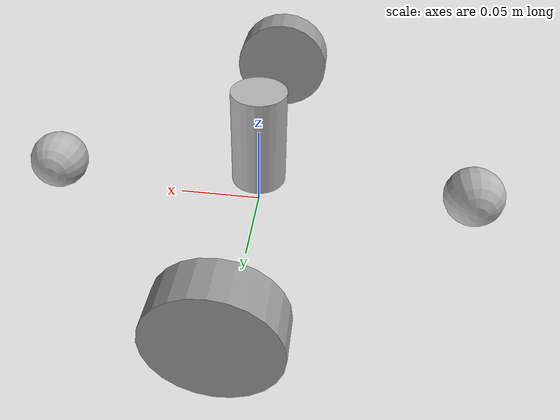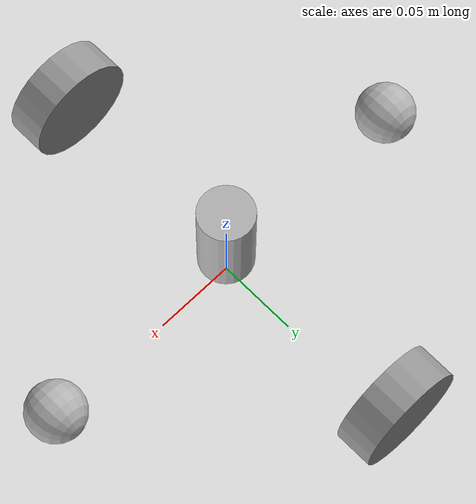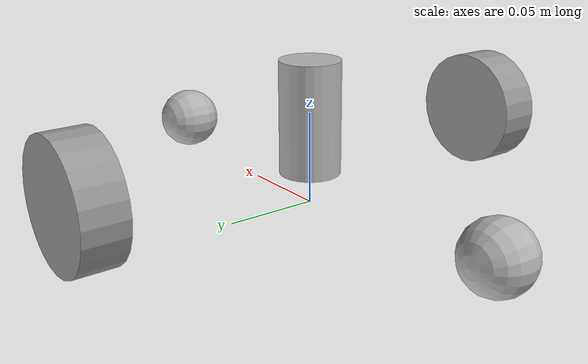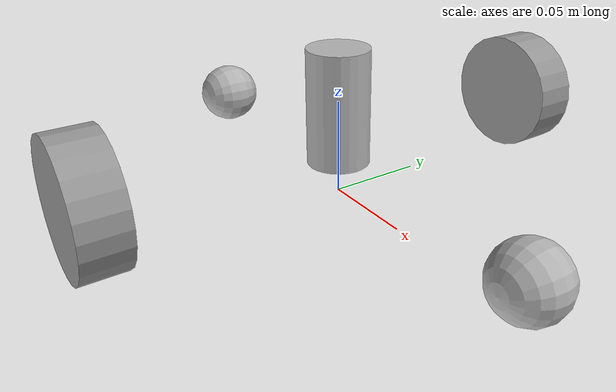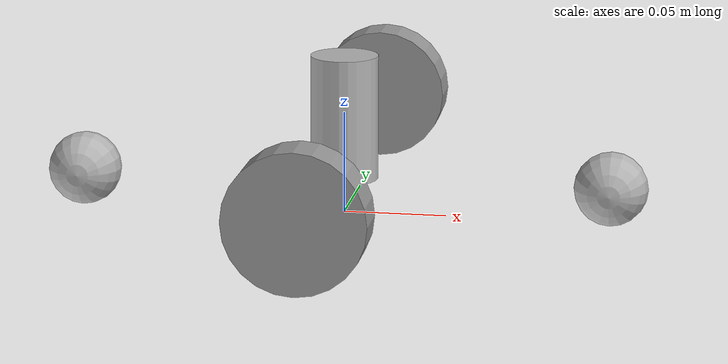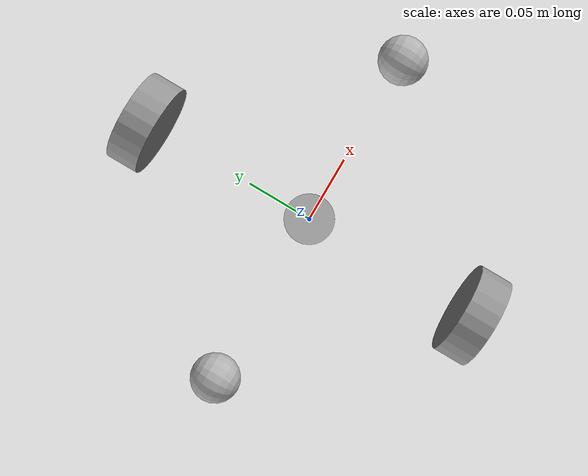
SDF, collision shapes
<?xml version="1.0" ?>
<sdf version="1.5">
  <model name="create">
    <link name="base">
      <inertial>
        <pose>0.001453 -0.000453 0.029787 0 0 0</pose>
        <inertia>
          <ixx>0.058640</ixx>
          <ixy>0.000124</ixy>
          <ixz>0.000615</ixz>
          <iyy>0.058786</iyy>
          <iyz>0.000014</iyz>
          <izz>1.532440</izz>
        </inertia>
        <mass>2.234000</mass>
      </inertial>
      <collision name="base_collision">
        <pose>0 0 0.047800 0 0 0</pose>
        <geometry>
          <cylinder>
            <radius>0.016495</radius>
            <length>0.061163</length>
          </cylinder>
        </geometry>
      </collision>
      <visual name="base_visual">
        <pose>0 0 0.047800 0 0 0</pose>
        <geometry>
          <mesh>
            <uri>model://create/meshes/create_body.dae</uri>
          </mesh>
        </geometry>
      </visual>
      <collision name="front_wheel_collision">
        <pose>0.130000 0 0.017000 0 1.570700 1.570700</pose>
        <geometry>
          <sphere>
            <radius>0.018000</radius>
          </sphere>
        </geometry>
        <surface>
          <friction>
            <ode>
              <mu>0</mu>
              <mu2>0</mu2>
              <fdir1>0 0 0</fdir1>
              <slip1>0</slip1>
              <slip2>0</slip2>
            </ode>
          </friction>
        </surface>
      </collision>
      <visual name="front_wheel_visual">
        <pose>0.130000 0 0.017000 0 1.570700 1.570700</pose>
        <geometry>
          <sphere>
            <radius>0.009000</radius>
          </sphere>
        </geometry>
      </visual>
      <collision name="rear_wheel_collision">
        <pose>-0.13 0 0.017 0 1.5707 1.5707</pose>
        <geometry>
          <sphere>
            <radius>0.018000</radius>
          </sphere>
        </geometry>
        <surface>
          <friction>
            <ode>
              <mu>0</mu>
              <mu2>0</mu2>
              <fdir1>0 0 0</fdir1>
              <slip1>0</slip1>
              <slip2>0</slip2>
            </ode>
          </friction>
        </surface>
      </collision>
      <visual name="rear_wheel_visual">
        <pose>-0.130000 0 0.017000 0 1.570700 1.570700</pose>
        <geometry>
          <sphere>
            <radius>0.007500</radius>
          </sphere>
        </geometry>
      </visual>
      <sensor name="left_cliff_sensor" type="ray">
        <pose>0.070000 0.140000 0.027000 0 1.570790 0</pose>
        <ray>
          <scan>
            <horizontal>
              <samples>1</samples>
              <resolution>1.000000</resolution>
              <min_angle>0</min_angle>
              <max_angle>0</max_angle>
            </horizontal>
          </scan>
          <range>
            <min>0.010000</min>
            <max>0.040000</max>
            <resolution>0.100000</resolution>
          </range>
        </ray>
      </sensor>
      <sensor name="leftfront_cliff_sensor" type="ray">
        <pose>0.150000 0.040000 0.027000 0 1.570790 0</pose>
        <ray>
          <scan>
            <horizontal>
              <samples>1</samples>
              <resolution>1.000000</resolution>
              <min_angle>0</min_angle>
              <max_angle>0</max_angle>
            </horizontal>
          </scan>
          <range>
            <min>0.010000</min>
            <max>0.040000</max>
            <resolution>0.100000</resolution>
          </range>
        </ray>
      </sensor>
      <sensor name="right_cliff_sensor" type="ray">
        <pose>0.070000 -0.140000 0.027000 0 1.570790 0</pose>
        <ray>
          <scan>
            <horizontal>
              <samples>1</samples>
              <resolution>1.000000</resolution>
              <min_angle>0</min_angle>
              <max_angle>0</max_angle>
            </horizontal>
          </scan>
          <range>
            <min>0.010000</min>
            <max>0.040000</max>
            <resolution>0.100000</resolution>
          </range>
        </ray>
      </sensor>
      <sensor name="rightfront_cliff_sensor" type="ray">
        <pose>0.150000 -0.040000 0.027000 0 1.570790 0</pose>
        <ray>
          <scan>
            <horizontal>
              <samples>1</samples>
              <resolution>1.000000</resolution>
              <min_angle>0</min_angle>
              <max_angle>0</max_angle>
            </horizontal>
          </scan>
          <range>
            <min>0.010000</min>
            <max>0.040000</max>
            <resolution>0.100000</resolution>
          </range>
        </ray>
      </sensor>
      <sensor name="wall_sensor" type="ray">
        <pose>0.090000 -0.120000 0.059000 0 0 -1.000000</pose>
        <ray>
          <scan>
            <horizontal>
              <samples>1</samples>
              <resolution>1.000000</resolution>
              <min_angle>0</min_angle>
              <max_angle>0</max_angle>
            </horizontal>
          </scan>
          <range>
            <min>0.016000</min>
            <max>0.040000</max>
            <resolution>0.100000</resolution>
          </range>
        </ray>
      </sensor>
    </link>
    <link name="left_wheel">
      <pose>0 0.130000 0.032000 0 0 0</pose>
      <inertial>
        <mass>0.5</mass>
        <pose>0 0 0 0 0 0</pose>
        <inertia>
          <ixx>0.001000</ixx>
          <ixy>0</ixy>
          <ixz>0</ixz>
          <iyy>0.001000</iyy>
          <iyz>0</iyz>
          <izz>0.001000</izz>
        </inertia>
      </inertial>
      <collision name="collision">
        <pose>0 0 0 0 1.570700 1.570700</pose>
        <geometry>
          <cylinder>
            <radius>0.033000</radius>
            <length>0.023000</length>
          </cylinder>
        </geometry>
        <surface>
          <friction>
            <ode>
              <mu>100</mu>
              <mu2>100</mu2>
              <fdir1>0 0 0</fdir1>
              <slip1>0</slip1>
              <slip2>0</slip2>
            </ode>
          </friction>
        </surface>
      </collision>
      <visual name="visual">
        <pose>0 0 0 0 1.570700 1.570700</pose>
        <geometry>
          <cylinder>
            <radius>0.033000</radius>
            <length>0.023000</length>
          </cylinder>
        </geometry>
        <material>
          <script>
            <name>Gazebo/Grey</name>
          </script>
        </material>
      </visual>
    </link>
    <link name="right_wheel">
      <pose>0 -0.130000 0.032000 0 0 0</pose>
      <inertial>
        <mass>0.5</mass>
        <pose>0 0 0 0 0 0</pose>
        <inertia>
          <ixx>0.001000</ixx>
          <ixy>0</ixy>
          <ixz>0</ixz>
          <iyy>0.001000</iyy>
          <iyz>0</iyz>
          <izz>0.001000</izz>
        </inertia>
      </inertial>
      <collision name="collision">
        <pose>0 0 0 0 1.570700 1.570700</pose>
        <geometry>
          <cylinder>
            <radius>0.033000</radius>
            <length>0.023000</length>
          </cylinder>
        </geometry>
        <surface>
          <friction>
            <ode>
              <mu>100</mu>
              <mu2>100</mu2>
              <fdir1>0 0 0</fdir1>
              <slip1>0</slip1>
              <slip2>0</slip2>
            </ode>
          </friction>
        </surface>
      </collision>
      <visual name="visual">
        <pose>0 0 0 0 1.570700 1.570700</pose>
        <geometry>
          <cylinder>
            <radius>0.033000</radius>
            <length>0.023000</length>
          </cylinder>
        </geometry>
        <material>
          <script>
            <name>Gazebo/Grey</name>
          </script>
        </material>
      </visual>
    </link>
    <joint name="left_wheel_joint" type="revolute">
      <parent>base</parent>
      <child>left_wheel</child>
      <axis>
        <xyz>0 1 0</xyz>
        <use_parent_model_frame>true</use_parent_model_frame>
      </axis>
    </joint>
    <joint name="right_wheel_joint" type="revolute">
      <parent>base</parent>
      <child>right_wheel</child>
      <axis>
        <xyz>0 1 0</xyz>
        <use_parent_model_frame>true</use_parent_model_frame>
      </axis>
    </joint>
  </model>
</sdf>
